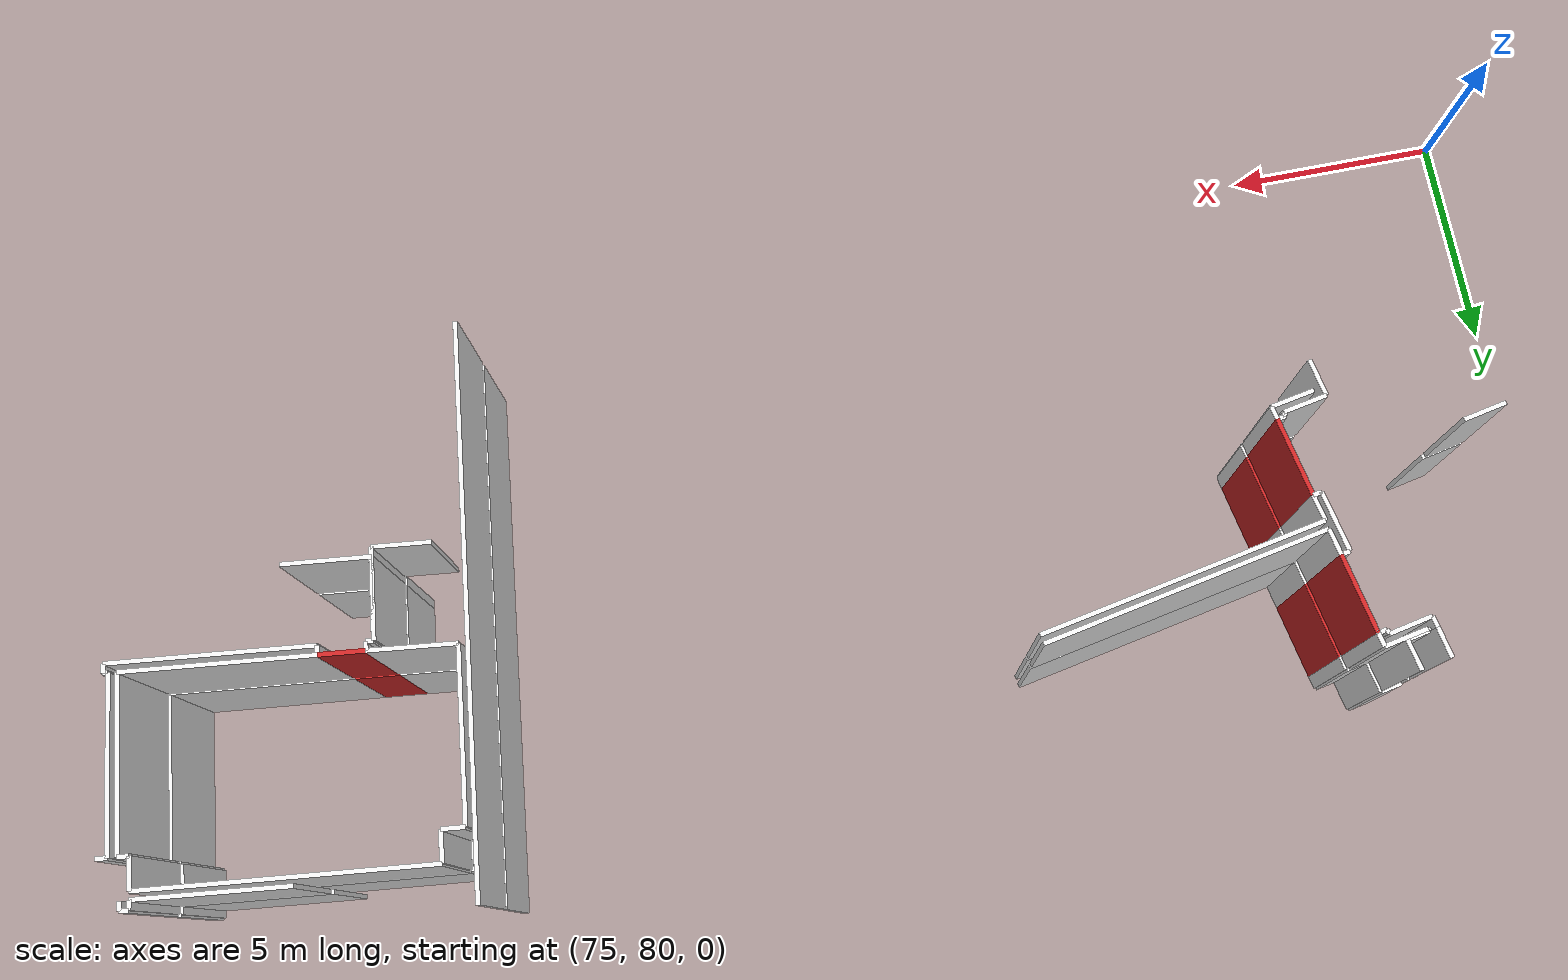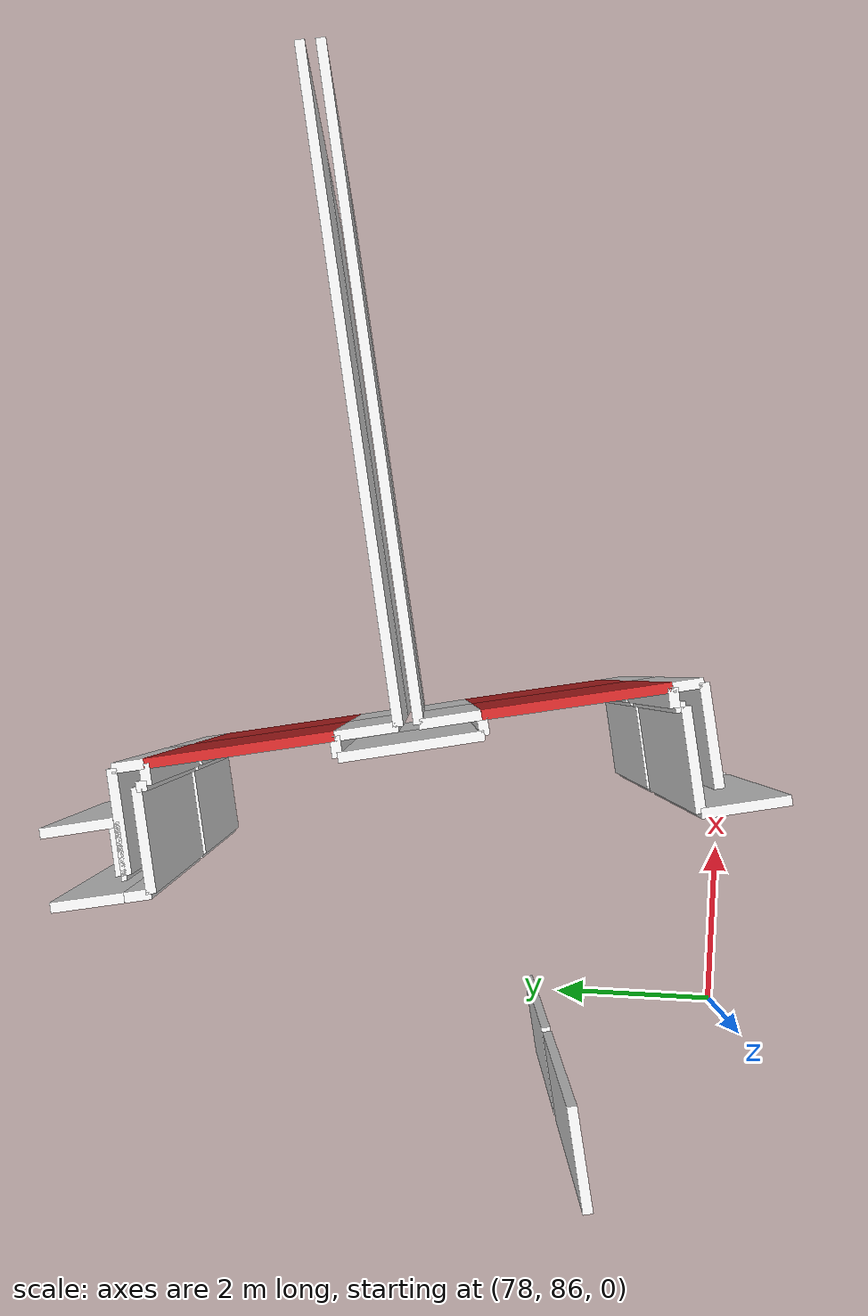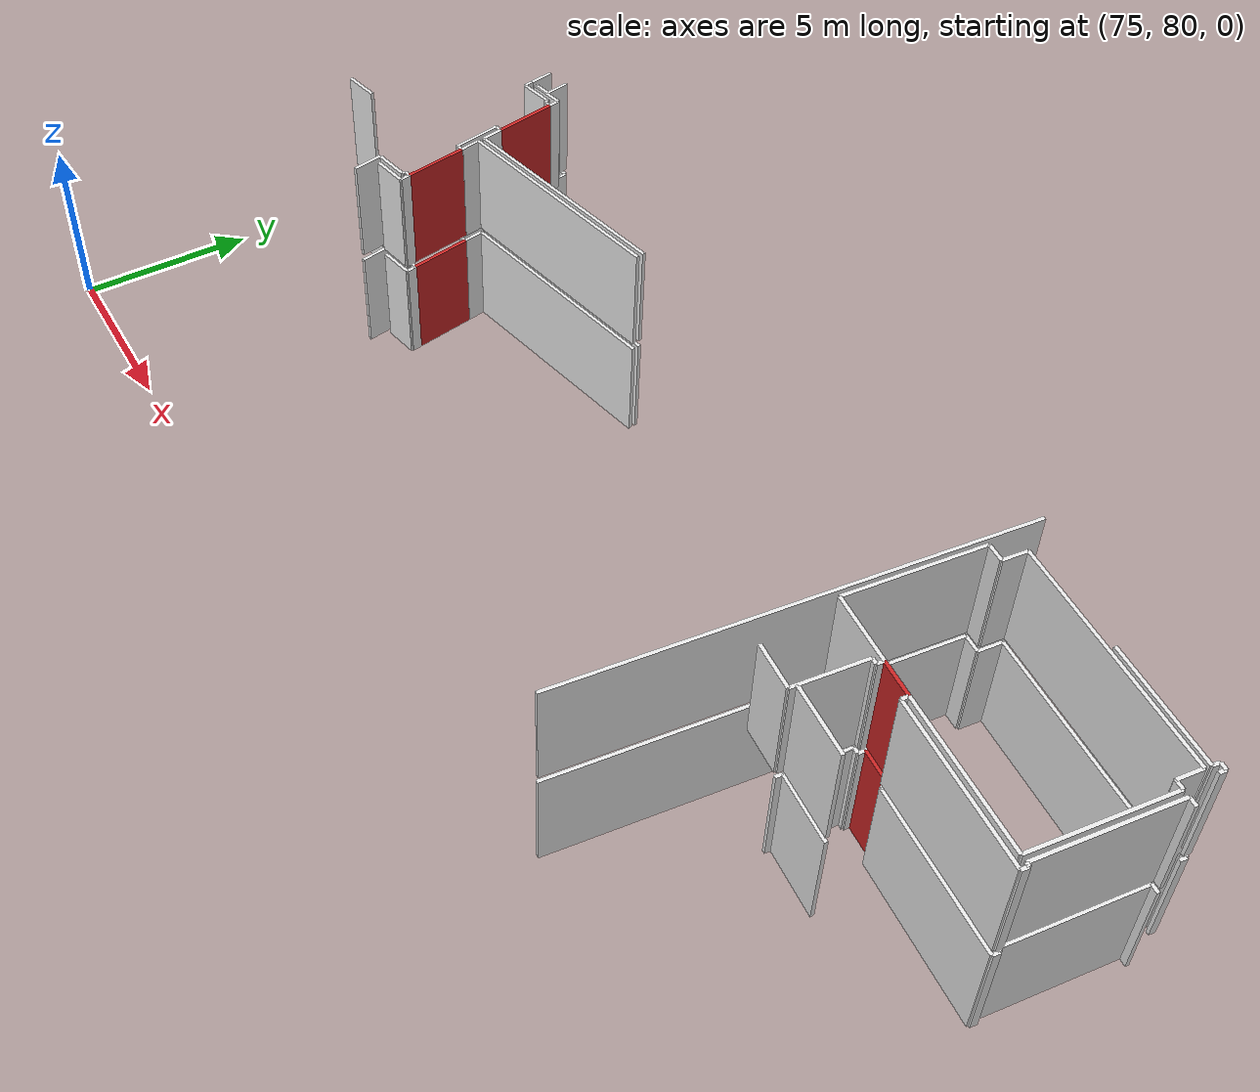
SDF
<sdf version="1.6">
 <world name="default">
  <model name="wall_102.4_88.9_0.0">
   <static>true</static>
   <pose>102.38000000000466 88.94000000017695 1.5 0 0 -0.09966865258337218</pose>
   <link name="link">
    <visual name="visual">
     <geometry><box><size>1.004987562121356 0.1 3</size></box></geometry>
     <material>
      <script><uri>file://media/materials/scripts/gazebo.material</uri><name>Gazebo/Red</name></script>
     </material>
    </visual>
   </link>
  </model>
  <model name="wall_81.3_91.7_0.0">
   <static>true</static>
   <pose>81.2949999999837 91.65999999991618 1.5 0 0 -1.374493662723798</pose>
   <link name="link">
    <visual name="visual">
     <geometry><box><size>1.7944637084198858 0.1 3</size></box></geometry>
     <material>
      <script><uri>file://media/materials/scripts/gazebo.material</uri><name>Gazebo/Red</name></script>
     </material>
    </visual>
   </link>
  </model>
  <model name="wall_81.9_88.5_0.0">
   <static>true</static>
   <pose>81.91500000000815 88.53499999991618 1.5 0 0 -1.3755746765469539</pose>
   <link name="link">
    <visual name="visual">
     <geometry><box><size>1.8042727066855455 0.1 3</size></box></geometry>
     <material>
      <script><uri>file://media/materials/scripts/gazebo.material</uri><name>Gazebo/Red</name></script>
     </material>
    </visual>
   </link>
  </model>
  <model name="wall_104.9_88.7_0.0">
   <static>true</static>
   <pose>104.94000000000233 88.68500000005588 1.5 0 0 -0.09918799887508435</pose>
   <link name="link">
    <visual name="visual">
     <geometry><box><size>4.1403502267421555 0.1 3</size></box></geometry>
     <material>
      <script><uri>file://media/materials/scripts/gazebo.material</uri><name>Gazebo/White</name></script>
     </material>
    </visual>
   </link>
  </model>
  <model name="wall_107.2_90.4_0.0">
   <static>true</static>
   <pose>107.19000000000233 90.36499999999069 1.5 0 0 1.4703398593399408</pose>
   <link name="link">
    <visual name="visual">
     <geometry><box><size>3.78910279619648 0.1 3</size></box></geometry>
     <material>
      <script><uri>file://media/materials/scripts/gazebo.material</uri><name>Gazebo/White</name></script>
     </material>
    </visual>
   </link>
  </model>
  <model name="wall_107.3_92.3_0.0">
   <static>true</static>
   <pose>107.25500000000466 92.26000000000931 1.5 0 0 3.061762667803524</pose>
   <link name="link">
    <visual name="visual">
     <geometry><box><size>0.25079872408117443 0.1 3</size></box></geometry>
     <material>
      <script><uri>file://media/materials/scripts/gazebo.material</uri><name>Gazebo/White</name></script>
     </material>
    </visual>
   </link>
  </model>
  <model name="wall_107.2_92.6_0.0">
   <static>true</static>
   <pose>107.16500000000815 92.62000000011176 1.5 0 0 1.4711276743202006</pose>
   <link name="link">
    <visual name="visual">
     <geometry><box><size>0.7034912936644975 0.1 3</size></box></geometry>
     <material>
      <script><uri>file://media/materials/scripts/gazebo.material</uri><name>Gazebo/White</name></script>
     </material>
    </visual>
   </link>
  </model>
  <model name="wall_104.1_93.3_0.0">
   <static>true</static>
   <pose>104.05999999999767 93.28500000014901 1.5 0 0 3.041608692913362</pose>
   <link name="link">
    <visual name="visual">
     <geometry><box><size>6.311521211261997 0.1 3</size></box></geometry>
     <material>
      <script><uri>file://media/materials/scripts/gazebo.material</uri><name>Gazebo/White</name></script>
     </material>
    </visual>
   </link>
  </model>
  <model name="wall_100.9_93.3_0.0">
   <static>true</static>
   <pose>100.88499999998021 93.25500000012107 1.5 0 0 -1.6718996985493473</pose>
   <link name="link">
    <visual name="visual">
     <geometry><box><size>0.693541635321099 0.1 3</size></box></geometry>
     <material>
      <script><uri>file://media/materials/scripts/gazebo.material</uri><name>Gazebo/White</name></script>
     </material>
    </visual>
   </link>
  </model>
  <model name="wall_100.6_92.9_0.0">
   <static>true</static>
   <pose>100.59999999997672 92.93500000005588 1.5 0 0 3.0419240014674718</pose>
   <link name="link">
    <visual name="visual">
     <geometry><box><size>0.5024937810375105 0.1 3</size></box></geometry>
     <material>
      <script><uri>file://media/materials/scripts/gazebo.material</uri><name>Gazebo/White</name></script>
     </material>
    </visual>
   </link>
  </model>
  <model name="wall_100.2_91.1_0.0">
   <static>true</static>
   <pose>100.15999999997439 91.07499999995343 1.5 0 0 -1.6712527942498523</pose>
   <link name="link">
    <visual name="visual">
     <geometry><box><size>3.78910279619648 0.1 3</size></box></geometry>
     <material>
      <script><uri>file://media/materials/scripts/gazebo.material</uri><name>Gazebo/White</name></script>
     </material>
    </visual>
   </link>
  </model>
  <model name="wall_100.9_89.1_0.0">
   <static>true</static>
   <pose>100.92499999998836 89.09000000008382 1.5 0 0 -0.10433183097900064</pose>
   <link name="link">
    <visual name="visual">
     <geometry><box><size>1.9204426573091837 0.1 3</size></box></geometry>
     <material>
      <script><uri>file://media/materials/scripts/gazebo.material</uri><name>Gazebo/White</name></script>
     </material>
    </visual>
   </link>
  </model>
  <model name="wall_107.7_92.2_0.0">
   <static>true</static>
   <pose>107.69500000000698 92.21500000008382 1.5 0 0 3.0221637283793843</pose>
   <link name="link">
    <visual name="visual">
     <geometry><box><size>0.2517935662158716 0.1 3</size></box></geometry>
     <material>
      <script><uri>file://media/materials/scripts/gazebo.material</uri><name>Gazebo/White</name></script>
     </material>
    </visual>
   </link>
  </model>
  <model name="wall_107.4_90.3_0.0">
   <static>true</static>
   <pose>107.38000000000466 90.34499999997206 1.5 0 0 -1.6712527942498523</pose>
   <link name="link">
    <visual name="visual">
     <geometry><box><size>3.78910279619648 0.1 3</size></box></geometry>
     <material>
      <script><uri>file://media/materials/scripts/gazebo.material</uri><name>Gazebo/White</name></script>
     </material>
    </visual>
   </link>
  </model>
  <model name="wall_107.2_88.5_0.0">
   <static>true</static>
   <pose>107.23999999999069 88.4550000000745 1.5 0 0 -0.09966865030117082</pose>
   <link name="link">
    <visual name="visual">
     <geometry><box><size>0.10049875616580058 0.1 3</size></box></geometry>
     <material>
      <script><uri>file://media/materials/scripts/gazebo.material</uri><name>Gazebo/White</name></script>
     </material>
    </visual>
   </link>
  </model>
  <model name="wall_102.5_86.9_0.0">
   <static>true</static>
   <pose>102.47000000000116 86.93499999982305 1.5 0 0 3.0429554602760422</pose>
   <link name="link">
    <visual name="visual">
     <geometry><box><size>1.929378138135752 0.1 3</size></box></geometry>
     <material>
      <script><uri>file://media/materials/scripts/gazebo.material</uri><name>Gazebo/White</name></script>
     </material>
    </visual>
   </link>
  </model>
  <model name="wall_101.6_87.9_0.0">
   <static>true</static>
   <pose>101.60000000000582 87.9199999999255 1.5 0 0 1.470015327728778</pose>
   <link name="link">
    <visual name="visual">
     <geometry><box><size>1.789077975082648 0.1 3</size></box></geometry>
     <material>
      <script><uri>file://media/materials/scripts/gazebo.material</uri><name>Gazebo/White</name></script>
     </material>
    </visual>
   </link>
  </model>
  <model name="wall_101.8_88.8_0.0">
   <static>true</static>
   <pose>101.77499999999418 88.80000000004657 1.5 0 0 -0.11710874468606086</pose>
   <link name="link">
    <visual name="visual">
     <geometry><box><size>0.1711724276722267 0.1 3</size></box></geometry>
     <material>
      <script><uri>file://media/materials/scripts/gazebo.material</uri><name>Gazebo/White</name></script>
     </material>
    </visual>
   </link>
  </model>
  <model name="wall_101.9_88.9_0.0">
   <static>true</static>
   <pose>101.86999999999534 88.89000000013039 1.5 0 0 1.4711276743037347</pose>
   <link name="link">
    <visual name="visual">
     <geometry><box><size>0.20099751260961132 0.1 3</size></box></geometry>
     <material>
      <script><uri>file://media/materials/scripts/gazebo.material</uri><name>Gazebo/White</name></script>
     </material>
    </visual>
   </link>
  </model>
  <model name="wall_102.9_88.8_0.0">
   <static>true</static>
   <pose>102.86999999999534 88.79000000003725 1.5 0 0 -1.6704649792860586</pose>
   <link name="link">
    <visual name="visual">
     <geometry><box><size>0.20099751260961132 0.1 3</size></box></geometry>
     <material>
      <script><uri>file://media/materials/scripts/gazebo.material</uri><name>Gazebo/White</name></script>
     </material>
    </visual>
   </link>
  </model>
  <model name="wall_105.1_88.5_0.0">
   <static>true</static>
   <pose>105.06500000000233 88.46999999997206 1.5 0 0 -0.099444135193827</pose>
   <link name="link">
    <visual name="visual">
     <geometry><box><size>4.431895756923703 0.1 3</size></box></geometry>
     <material>
      <script><uri>file://media/materials/scripts/gazebo.material</uri><name>Gazebo/White</name></script>
     </material>
    </visual>
   </link>
  </model>
  <model name="wall_107.3_88.4_0.0">
   <static>true</static>
   <pose>107.27999999999884 88.35000000009313 1.5 0 0 1.4711276745918913</pose>
   <link name="link">
    <visual name="visual">
     <geometry><box><size>0.20099751260381943 0.1 3</size></box></geometry>
     <material>
      <script><uri>file://media/materials/scripts/gazebo.material</uri><name>Gazebo/White</name></script>
     </material>
    </visual>
   </link>
  </model>
  <model name="wall_80.2_93.4_0.0">
   <static>true</static>
   <pose>80.17499999998836 93.42000000015832 1.5 0 0 0.2013171085608308</pose>
   <link name="link">
    <visual name="visual">
     <geometry><box><size>0.5000999900114971 0.1 3</size></box></geometry>
     <material>
      <script><uri>file://media/materials/scripts/gazebo.material</uri><name>Gazebo/White</name></script>
     </material>
    </visual>
   </link>
  </model>
  <model name="wall_80.5_93.1_0.0">
   <static>true</static>
   <pose>80.48999999999069 93.13000000012107 1.5 0 0 -1.3677511095704145</pose>
   <link name="link">
    <visual name="visual">
     <geometry><box><size>0.6942621984754026 0.1 3</size></box></geometry>
     <material>
      <script><uri>file://media/materials/scripts/gazebo.material</uri><name>Gazebo/White</name></script>
     </material>
    </visual>
   </link>
  </model>
  <model name="wall_80.3_92.7_0.0">
   <static>true</static>
   <pose>80.31500000000233 92.73999999999069 1.5 0 0 -2.9402755450289626</pose>
   <link name="link">
    <visual name="visual">
     <geometry><box><size>0.5000999900114971 0.1 3</size></box></geometry>
     <material>
      <script><uri>file://media/materials/scripts/gazebo.material</uri><name>Gazebo/White</name></script>
     </material>
    </visual>
   </link>
  </model>
  <model name="wall_80.1_92.7_0.0">
   <static>true</static>
   <pose>80.07500000001164 92.66500000003725 1.5 0 0 -1.3734007660495133</pose>
   <link name="link">
    <visual name="visual">
     <geometry><box><size>0.05099019495510694 0.1 3</size></box></geometry>
     <material>
      <script><uri>file://media/materials/scripts/gazebo.material</uri><name>Gazebo/White</name></script>
     </material>
    </visual>
   </link>
  </model>
  <model name="wall_80.6_92.7_0.0">
   <static>true</static>
   <pose>80.57000000000698 92.73999999999069 1.5 0 0 0.20131710810466522</pose>
   <link name="link">
    <visual name="visual">
     <geometry><box><size>1.0001999799298806 0.1 3</size></box></geometry>
     <material>
      <script><uri>file://media/materials/scripts/gazebo.material</uri><name>Gazebo/White</name></script>
     </material>
    </visual>
   </link>
  </model>
  <model name="wall_81.1_92.7_0.0">
   <static>true</static>
   <pose>81.08999999999651 92.68999999994412 1.5 0 0 -1.373400766833078</pose>
   <link name="link">
    <visual name="visual">
     <geometry><box><size>0.3059411706324631 0.1 3</size></box></geometry>
     <material>
      <script><uri>file://media/materials/scripts/gazebo.material</uri><name>Gazebo/White</name></script>
     </material>
    </visual>
   </link>
  </model>
  <model name="wall_81.5_90.5_0.0">
   <static>true</static>
   <pose>81.52999999999884 90.48499999986961 1.5 0 0 -1.3701434493385232</pose>
   <link name="link">
    <visual name="visual">
     <geometry><box><size>0.6020797288042661 0.1 3</size></box></geometry>
     <material>
      <script><uri>file://media/materials/scripts/gazebo.material</uri><name>Gazebo/White</name></script>
     </material>
    </visual>
   </link>
  </model>
  <model name="wall_84.8_90.8_0.0">
   <static>true</static>
   <pose>84.80500000002212 90.8300000000745 1.5 0 0 0.19649816258288277</pose>
   <link name="link">
    <visual name="visual">
     <geometry><box><size>6.556165037625101 0.1 3</size></box></geometry>
     <material>
      <script><uri>file://media/materials/scripts/gazebo.material</uri><name>Gazebo/White</name></script>
     </material>
    </visual>
   </link>
  </model>
  <model name="wall_77.7_88.3_0.0">
   <static>true</static>
   <pose>77.67999999999302 88.30000000004657 1.5 0 0 0.20131710810466522</pose>
   <link name="link">
    <visual name="visual">
     <geometry><box><size>1.0001999799298806 0.1 3</size></box></geometry>
     <material>
      <script><uri>file://media/materials/scripts/gazebo.material</uri><name>Gazebo/White</name></script>
     </material>
    </visual>
   </link>
  </model>
  <model name="wall_79.8_93.0_0.0">
   <static>true</static>
   <pose>79.80499999999302 92.98999999999069 1.5 0 0 -1.3818991459561358</pose>
   <link name="link">
    <visual name="visual">
     <geometry><box><size>0.6923149573923696 0.1 3</size></box></geometry>
     <material>
      <script><uri>file://media/materials/scripts/gazebo.material</uri><name>Gazebo/White</name></script>
     </material>
    </visual>
   </link>
  </model>
  <model name="wall_79.9_92.5_0.0">
   <static>true</static>
   <pose>79.89499999998952 92.52499999990687 1.5 0 0 -1.373400766989791</pose>
   <link name="link">
    <visual name="visual">
     <geometry><box><size>0.25495097567735614 0.1 3</size></box></geometry>
     <material>
      <script><uri>file://media/materials/scripts/gazebo.material</uri><name>Gazebo/White</name></script>
     </material>
    </visual>
   </link>
  </model>
  <model name="wall_80.4_92.5_0.0">
   <static>true</static>
   <pose>80.41000000000349 92.5 1.5 0 0 0.20131710854919393</pose>
   <link name="link">
    <visual name="visual">
     <geometry><box><size>1.0001999800800263 0.1 3</size></box></geometry>
     <material>
      <script><uri>file://media/materials/scripts/gazebo.material</uri><name>Gazebo/White</name></script>
     </material>
    </visual>
   </link>
  </model>
  <model name="wall_80.9_92.6_0.0">
   <static>true</static>
   <pose>80.91000000000349 92.55000000004657 1.5 0 0 -1.3734007675047049</pose>
   <link name="link">
    <visual name="visual">
     <geometry><box><size>0.10198039035541688 0.1 3</size></box></geometry>
     <material>
      <script><uri>file://media/materials/scripts/gazebo.material</uri><name>Gazebo/White</name></script>
     </material>
    </visual>
   </link>
  </model>
  <model name="wall_81.0_92.5_0.0">
   <static>true</static>
   <pose>81.01999999998952 92.52000000001863 1.5 0 0 0.19739556001778746</pose>
   <link name="link">
    <visual name="visual">
     <geometry><box><size>0.20396078056243275 0.1 3</size></box></geometry>
     <material>
      <script><uri>file://media/materials/scripts/gazebo.material</uri><name>Gazebo/White</name></script>
     </material>
    </visual>
   </link>
  </model>
  <model name="wall_81.4_90.8_0.0">
   <static>true</static>
   <pose>81.36999999999534 90.76000000000931 1.5 0 0 -2.944197095754793</pose>
   <link name="link">
    <visual name="visual">
     <geometry><box><size>0.20396078041403173 0.1 3</size></box></geometry>
     <material>
      <script><uri>file://media/materials/scripts/gazebo.material</uri><name>Gazebo/White</name></script>
     </material>
    </visual>
   </link>
  </model>
  <model name="wall_81.4_90.1_0.0">
   <static>true</static>
   <pose>81.41000000000349 90.06000000005588 1.5 0 0 -1.3677511096114738</pose>
   <link name="link">
    <visual name="visual">
     <geometry><box><size>1.3885243969390675 0.1 3</size></box></geometry>
     <material>
      <script><uri>file://media/materials/scripts/gazebo.material</uri><name>Gazebo/White</name></script>
     </material>
    </visual>
   </link>
  </model>
  <model name="wall_81.6_89.4_0.0">
   <static>true</static>
   <pose>81.64499999998952 89.39999999990687 1.5 0 0 0.20749622662047904</pose>
   <link name="link">
    <visual name="visual">
     <geometry><box><size>0.19416487839942884 0.1 3</size></box></geometry>
     <material>
      <script><uri>file://media/materials/scripts/gazebo.material</uri><name>Gazebo/White</name></script>
     </material>
    </visual>
   </link>
  </model>
  <model name="wall_82.0_87.6_0.0">
   <static>true</static>
   <pose>81.99500000002445 87.63500000000931 1.5 0 0 -2.9849907776618085</pose>
   <link name="link">
    <visual name="visual">
     <geometry><box><size>0.19235384058705793 0.1 3</size></box></geometry>
     <material>
      <script><uri>file://media/materials/scripts/gazebo.material</uri><name>Gazebo/White</name></script>
     </material>
    </visual>
   </link>
  </model>
  <model name="wall_81.9_87.6_0.0">
   <static>true</static>
   <pose>81.91000000000349 87.57000000006519 1.5 0 0 -1.3734007675047049</pose>
   <link name="link">
    <visual name="visual">
     <geometry><box><size>0.10198039035541688 0.1 3</size></box></geometry>
     <material>
      <script><uri>file://media/materials/scripts/gazebo.material</uri><name>Gazebo/White</name></script>
     </material>
    </visual>
   </link>
  </model>
  <model name="wall_81.4_87.4_0.0">
   <static>true</static>
   <pose>81.42499999998836 87.42500000004657 1.5 0 0 -2.9519790378681012</pose>
   <link name="link">
    <visual name="visual">
     <geometry><box><size>1.0080674580405449 0.1 3</size></box></geometry>
     <material>
      <script><uri>file://media/materials/scripts/gazebo.material</uri><name>Gazebo/White</name></script>
     </material>
    </visual>
   </link>
  </model>
  <model name="wall_81.0_86.9_0.0">
   <static>true</static>
   <pose>81.01499999998487 86.91000000014901 1.5 0 0 -1.3711124414039455</pose>
   <link name="link">
    <visual name="visual">
     <geometry><box><size>0.8570297542933495 0.1 3</size></box></geometry>
     <material>
      <script><uri>file://media/materials/scripts/gazebo.material</uri><name>Gazebo/White</name></script>
     </material>
    </visual>
   </link>
  </model>
  <model name="wall_107.4_93.2_0.0">
   <static>true</static>
   <pose>107.42999999999302 93.2249999998603 1.5 0 0 1.4659193879370842</pose>
   <link name="link">
    <visual name="visual">
     <geometry><box><size>0.19104973169180559 0.1 3</size></box></geometry>
     <material>
      <script><uri>file://media/materials/scripts/gazebo.material</uri><name>Gazebo/White</name></script>
     </material>
    </visual>
   </link>
  </model>
  <model name="wall_107.3_93.3_0.0">
   <static>true</static>
   <pose>107.34500000000116 93.33499999996275 1.5 0 0 2.9849907752705747</pose>
   <link name="link">
    <visual name="visual">
     <geometry><box><size>0.19235384065968367 0.1 3</size></box></geometry>
     <material>
      <script><uri>file://media/materials/scripts/gazebo.material</uri><name>Gazebo/White</name></script>
     </material>
    </visual>
   </link>
  </model>
  <model name="wall_107.2_93.2_0.0">
   <static>true</static>
   <pose>107.23499999998603 93.24500000011176 1.5 0 0 -1.712693381554281</pose>
   <link name="link">
    <visual name="visual">
     <geometry><box><size>0.21213203432303704 0.1 3</size></box></geometry>
     <material>
      <script><uri>file://media/materials/scripts/gazebo.material</uri><name>Gazebo/White</name></script>
     </material>
    </visual>
   </link>
  </model>
  <model name="wall_105.6_93.3_0.0">
   <static>true</static>
   <pose>105.57499999998254 93.31000000005588 1.5 0 0 3.038614747278259</pose>
   <link name="link">
    <visual name="visual">
     <geometry><box><size>3.307521730807039 0.1 3</size></box></geometry>
     <material>
      <script><uri>file://media/materials/scripts/gazebo.material</uri><name>Gazebo/White</name></script>
     </material>
    </visual>
   </link>
  </model>
  <model name="wall_99.7_88.4_0.0">
   <static>true</static>
   <pose>99.69000000000233 88.375 1.5 0 0 -1.6724688239947545</pose>
   <link name="link">
    <visual name="visual">
     <geometry><box><size>12.414108908448563 0.1 3</size></box></geometry>
     <material>
      <script><uri>file://media/materials/scripts/gazebo.material</uri><name>Gazebo/White</name></script>
     </material>
    </visual>
   </link>
  </model>
  <model name="wall_84.8_90.6_0.0">
   <static>true</static>
   <pose>84.83499999999185 90.63500000000931 1.5 0 0 -2.946590865346617</pose>
   <link name="link">
    <visual name="visual">
     <geometry><box><size>6.554220014613294 0.1 3</size></box></geometry>
     <material>
      <script><uri>file://media/materials/scripts/gazebo.material</uri><name>Gazebo/White</name></script>
     </material>
    </visual>
   </link>
  </model>
  <model name="wall_81.7_89.7_0.0">
   <static>true</static>
   <pose>81.67999999999302 89.70999999996275 1.5 0 0 -1.3667783472355337</pose>
   <link name="link">
    <visual name="visual">
     <geometry><box><size>0.592283715870451 0.1 3</size></box></geometry>
     <material>
      <script><uri>file://media/materials/scripts/gazebo.material</uri><name>Gazebo/White</name></script>
     </material>
    </visual>
   </link>
  </model>
  <model name="wall_82.1_87.5_0.0">
   <static>true</static>
   <pose>82.12000000002445 87.50499999988824 1.5 0 0 -1.3667783472355337</pose>
   <link name="link">
    <visual name="visual">
     <geometry><box><size>0.2961418579352255 0.1 3</size></box></geometry>
     <material>
      <script><uri>file://media/materials/scripts/gazebo.material</uri><name>Gazebo/White</name></script>
     </material>
    </visual>
   </link>
  </model>
  <model name="wall_81.7_87.3_0.0">
   <static>true</static>
   <pose>81.66000000000349 87.26499999989755 1.5 0 0 -2.950090935182675</pose>
   <link name="link">
    <visual name="visual">
     <geometry><box><size>0.9982484660926583 0.1 3</size></box></geometry>
     <material>
      <script><uri>file://media/materials/scripts/gazebo.material</uri><name>Gazebo/White</name></script>
     </material>
    </visual>
   </link>
  </model>
  <model name="wall_101.6_87.8_0.0">
   <static>true</static>
   <pose>101.58999999999651 87.81499999994412 1.5 0 0 1.4706301619123556</pose>
   <link name="link">
    <visual name="visual">
     <geometry><box><size>2.000025000067313 0.1 3</size></box></geometry>
     <material>
      <script><uri>file://media/materials/scripts/gazebo.material</uri><name>Gazebo/White</name></script>
     </material>
    </visual>
   </link>
  </model>
  <model name="wall_102.4_88.9_3.2">
   <static>true</static>
   <pose>102.38000000000466 88.94000000017695 4.7 0 0 -0.09966865258337218</pose>
   <link name="link">
    <visual name="visual">
     <geometry><box><size>1.004987562121356 0.1 3</size></box></geometry>
     <material>
      <script><uri>file://media/materials/scripts/gazebo.material</uri><name>Gazebo/Red</name></script>
     </material>
    </visual>
   </link>
  </model>
  <model name="wall_81.3_91.7_3.2">
   <static>true</static>
   <pose>81.2949999999837 91.65999999991618 4.7 0 0 -1.374493662723798</pose>
   <link name="link">
    <visual name="visual">
     <geometry><box><size>1.7944637084198858 0.1 3</size></box></geometry>
     <material>
      <script><uri>file://media/materials/scripts/gazebo.material</uri><name>Gazebo/Red</name></script>
     </material>
    </visual>
   </link>
  </model>
  <model name="wall_81.9_88.5_3.2">
   <static>true</static>
   <pose>81.91500000000815 88.53499999991618 4.7 0 0 -1.3755746765469539</pose>
   <link name="link">
    <visual name="visual">
     <geometry><box><size>1.8042727066855455 0.1 3</size></box></geometry>
     <material>
      <script><uri>file://media/materials/scripts/gazebo.material</uri><name>Gazebo/Red</name></script>
     </material>
    </visual>
   </link>
  </model>
  <model name="wall_104.9_88.7_3.2">
   <static>true</static>
   <pose>104.94000000000233 88.68500000005588 4.7 0 0 -0.09918799887508435</pose>
   <link name="link">
    <visual name="visual">
     <geometry><box><size>4.1403502267421555 0.1 3</size></box></geometry>
     <material>
      <script><uri>file://media/materials/scripts/gazebo.material</uri><name>Gazebo/White</name></script>
     </material>
    </visual>
   </link>
  </model>
  <model name="wall_107.2_90.4_3.2">
   <static>true</static>
   <pose>107.19000000000233 90.36499999999069 4.7 0 0 1.4703398593399408</pose>
   <link name="link">
    <visual name="visual">
     <geometry><box><size>3.78910279619648 0.1 3</size></box></geometry>
     <material>
      <script><uri>file://media/materials/scripts/gazebo.material</uri><name>Gazebo/White</name></script>
     </material>
    </visual>
   </link>
  </model>
  <model name="wall_107.3_92.3_3.2">
   <static>true</static>
   <pose>107.25500000000466 92.26000000000931 4.7 0 0 3.061762667803524</pose>
   <link name="link">
    <visual name="visual">
     <geometry><box><size>0.25079872408117443 0.1 3</size></box></geometry>
     <material>
      <script><uri>file://media/materials/scripts/gazebo.material</uri><name>Gazebo/White</name></script>
     </material>
    </visual>
   </link>
  </model>
  <model name="wall_107.2_92.6_3.2">
   <static>true</static>
   <pose>107.16500000000815 92.62000000011176 4.7 0 0 1.4711276743202006</pose>
   <link name="link">
    <visual name="visual">
     <geometry><box><size>0.7034912936644975 0.1 3</size></box></geometry>
     <material>
      <script><uri>file://media/materials/scripts/gazebo.material</uri><name>Gazebo/White</name></script>
     </material>
    </visual>
   </link>
  </model>
  <model name="wall_104.1_93.3_3.2">
   <static>true</static>
   <pose>104.05999999999767 93.28500000014901 4.7 0 0 3.041608692913362</pose>
   <link name="link">
    <visual name="visual">
     <geometry><box><size>6.311521211261997 0.1 3</size></box></geometry>
     <material>
      <script><uri>file://media/materials/scripts/gazebo.material</uri><name>Gazebo/White</name></script>
     </material>
    </visual>
   </link>
  </model>
  <model name="wall_100.9_93.3_3.2">
   <static>true</static>
   <pose>100.88499999998021 93.25500000012107 4.7 0 0 -1.6718996985493473</pose>
   <link name="link">
    <visual name="visual">
     <geometry><box><size>0.693541635321099 0.1 3</size></box></geometry>
     <material>
      <script><uri>file://media/materials/scripts/gazebo.material</uri><name>Gazebo/White</name></script>
     </material>
    </visual>
   </link>
  </model>
  <model name="wall_100.6_92.9_3.2">
   <static>true</static>
   <pose>100.59999999997672 92.93500000005588 4.7 0 0 3.0419240014674718</pose>
   <link name="link">
    <visual name="visual">
     <geometry><box><size>0.5024937810375105 0.1 3</size></box></geometry>
     <material>
      <script><uri>file://media/materials/scripts/gazebo.material</uri><name>Gazebo/White</name></script>
     </material>
    </visual>
   </link>
  </model>
  <model name="wall_100.2_91.1_3.2">
   <static>true</static>
   <pose>100.15999999997439 91.07499999995343 4.7 0 0 -1.6712527942498523</pose>
   <link name="link">
    <visual name="visual">
     <geometry><box><size>3.78910279619648 0.1 3</size></box></geometry>
     <material>
      <script><uri>file://media/materials/scripts/gazebo.material</uri><name>Gazebo/White</name></script>
     </material>
    </visual>
   </link>
  </model>
  <model name="wall_100.9_89.1_3.2">
   <static>true</static>
   <pose>100.92499999998836 89.09000000008382 4.7 0 0 -0.10433183097900064</pose>
   <link name="link">
    <visual name="visual">
     <geometry><box><size>1.9204426573091837 0.1 3</size></box></geometry>
     <material>
      <script><uri>file://media/materials/scripts/gazebo.material</uri><name>Gazebo/White</name></script>
     </material>
    </visual>
   </link>
  </model>
  <model name="wall_107.7_92.2_3.2">
   <static>true</static>
   <pose>107.69500000000698 92.21500000008382 4.7 0 0 3.0221637283793843</pose>
   <link name="link">
    <visual name="visual">
     <geometry><box><size>0.2517935662158716 0.1 3</size></box></geometry>
     <material>
      <script><uri>file://media/materials/scripts/gazebo.material</uri><name>Gazebo/White</name></script>
     </material>
    </visual>
   </link>
  </model>
  <model name="wall_107.4_90.3_3.2">
   <static>true</static>
   <pose>107.38000000000466 90.34499999997206 4.7 0 0 -1.6712527942498523</pose>
   <link name="link">
    <visual name="visual">
     <geometry><box><size>3.78910279619648 0.1 3</size></box></geometry>
     <material>
      <script><uri>file://media/materials/scripts/gazebo.material</uri><name>Gazebo/White</name></script>
     </material>
    </visual>
   </link>
  </model>
  <model name="wall_107.2_88.5_3.2">
   <static>true</static>
   <pose>107.23999999999069 88.4550000000745 4.7 0 0 -0.09966865030117082</pose>
   <link name="link">
    <visual name="visual">
     <geometry><box><size>0.10049875616580058 0.1 3</size></box></geometry>
     <material>
      <script><uri>file://media/materials/scripts/gazebo.material</uri><name>Gazebo/White</name></script>
     </material>
    </visual>
   </link>
  </model>
  <model name="wall_100.9_86.9_3.2">
   <static>true</static>
   <pose>100.85999999998603 86.88500000000931 4.7 0 0 3.038781827344916</pose>
   <link name="link">
    <visual name="visual">
     <geometry><box><size>1.2666885963469807 0.1 3</size></box></geometry>
     <material>
      <script><uri>file://media/materials/scripts/gazebo.material</uri><name>Gazebo/White</name></script>
     </material>
    </visual>
   </link>
  </model>
  <model name="wall_102.5_86.9_3.2">
   <static>true</static>
   <pose>102.47000000000116 86.93499999982305 4.7 0 0 3.0429554602760422</pose>
   <link name="link">
    <visual name="visual">
     <geometry><box><size>1.929378138135752 0.1 3</size></box></geometry>
     <material>
      <script><uri>file://media/materials/scripts/gazebo.material</uri><name>Gazebo/White</name></script>
     </material>
    </visual>
   </link>
  </model>
  <model name="wall_101.6_87.9_3.2">
   <static>true</static>
   <pose>101.60000000000582 87.9199999999255 4.7 0 0 1.470015327728778</pose>
   <link name="link">
    <visual name="visual">
     <geometry><box><size>1.789077975082648 0.1 3</size></box></geometry>
     <material>
      <script><uri>file://media/materials/scripts/gazebo.material</uri><name>Gazebo/White</name></script>
     </material>
    </visual>
   </link>
  </model>
  <model name="wall_101.8_88.8_3.2">
   <static>true</static>
   <pose>101.77499999999418 88.80000000004657 4.7 0 0 -0.11710874468606086</pose>
   <link name="link">
    <visual name="visual">
     <geometry><box><size>0.1711724276722267 0.1 3</size></box></geometry>
     <material>
      <script><uri>file://media/materials/scripts/gazebo.material</uri><name>Gazebo/White</name></script>
     </material>
    </visual>
   </link>
  </model>
  <model name="wall_101.9_88.9_3.2">
   <static>true</static>
   <pose>101.86999999999534 88.89000000013039 4.7 0 0 1.4711276743037347</pose>
   <link name="link">
    <visual name="visual">
     <geometry><box><size>0.20099751260961132 0.1 3</size></box></geometry>
     <material>
      <script><uri>file://media/materials/scripts/gazebo.material</uri><name>Gazebo/White</name></script>
     </material>
    </visual>
   </link>
  </model>
  <model name="wall_102.9_88.8_3.2">
   <static>true</static>
   <pose>102.86999999999534 88.79000000003725 4.7 0 0 -1.6704649792860586</pose>
   <link name="link">
    <visual name="visual">
     <geometry><box><size>0.20099751260961132 0.1 3</size></box></geometry>
     <material>
      <script><uri>file://media/materials/scripts/gazebo.material</uri><name>Gazebo/White</name></script>
     </material>
    </visual>
   </link>
  </model>
  <model name="wall_105.1_88.5_3.2">
   <static>true</static>
   <pose>105.06500000000233 88.46999999997206 4.7 0 0 -0.099444135193827</pose>
   <link name="link">
    <visual name="visual">
     <geometry><box><size>4.431895756923703 0.1 3</size></box></geometry>
     <material>
      <script><uri>file://media/materials/scripts/gazebo.material</uri><name>Gazebo/White</name></script>
     </material>
    </visual>
   </link>
  </model>
  <model name="wall_107.3_88.4_3.2">
   <static>true</static>
   <pose>107.27999999999884 88.35000000009313 4.7 0 0 1.4711276745918913</pose>
   <link name="link">
    <visual name="visual">
     <geometry><box><size>0.20099751260381943 0.1 3</size></box></geometry>
     <material>
      <script><uri>file://media/materials/scripts/gazebo.material</uri><name>Gazebo/White</name></script>
     </material>
    </visual>
   </link>
  </model>
  <model name="wall_80.5_93.1_3.2">
   <static>true</static>
   <pose>80.48999999999069 93.13000000012107 4.7 0 0 -1.3677511095704145</pose>
   <link name="link">
    <visual name="visual">
     <geometry><box><size>0.6942621984754026 0.1 3</size></box></geometry>
     <material>
      <script><uri>file://media/materials/scripts/gazebo.material</uri><name>Gazebo/White</name></script>
     </material>
    </visual>
   </link>
  </model>
  <model name="wall_80.3_92.7_3.2">
   <static>true</static>
   <pose>80.31500000000233 92.73999999999069 4.7 0 0 -2.9402755450289626</pose>
   <link name="link">
    <visual name="visual">
     <geometry><box><size>0.5000999900114971 0.1 3</size></box></geometry>
     <material>
      <script><uri>file://media/materials/scripts/gazebo.material</uri><name>Gazebo/White</name></script>
     </material>
    </visual>
   </link>
  </model>
  <model name="wall_80.1_92.7_3.2">
   <static>true</static>
   <pose>80.07500000001164 92.66500000003725 4.7 0 0 -1.3734007660495133</pose>
   <link name="link">
    <visual name="visual">
     <geometry><box><size>0.05099019495510694 0.1 3</size></box></geometry>
     <material>
      <script><uri>file://media/materials/scripts/gazebo.material</uri><name>Gazebo/White</name></script>
     </material>
    </visual>
   </link>
  </model>
  <model name="wall_80.6_92.7_3.2">
   <static>true</static>
   <pose>80.57000000000698 92.73999999999069 4.7 0 0 0.20131710810466522</pose>
   <link name="link">
    <visual name="visual">
     <geometry><box><size>1.0001999799298806 0.1 3</size></box></geometry>
     <material>
      <script><uri>file://media/materials/scripts/gazebo.material</uri><name>Gazebo/White</name></script>
     </material>
    </visual>
   </link>
  </model>
  <model name="wall_81.1_92.7_3.2">
   <static>true</static>
   <pose>81.08999999999651 92.68999999994412 4.7 0 0 -1.373400766833078</pose>
   <link name="link">
    <visual name="visual">
     <geometry><box><size>0.3059411706324631 0.1 3</size></box></geometry>
     <material>
      <script><uri>file://media/materials/scripts/gazebo.material</uri><name>Gazebo/White</name></script>
     </material>
    </visual>
   </link>
  </model>
  <model name="wall_81.5_90.5_3.2">
   <static>true</static>
   <pose>81.52999999999884 90.48499999986961 4.7 0 0 -1.3701434493385232</pose>
   <link name="link">
    <visual name="visual">
     <geometry><box><size>0.6020797288042661 0.1 3</size></box></geometry>
     <material>
      <script><uri>file://media/materials/scripts/gazebo.material</uri><name>Gazebo/White</name></script>
     </material>
    </visual>
   </link>
  </model>
  <model name="wall_84.8_90.8_3.2">
   <static>true</static>
   <pose>84.80500000002212 90.8300000000745 4.7 0 0 0.19649816258288277</pose>
   <link name="link">
    <visual name="visual">
     <geometry><box><size>6.556165037625101 0.1 3</size></box></geometry>
     <material>
      <script><uri>file://media/materials/scripts/gazebo.material</uri><name>Gazebo/White</name></script>
     </material>
    </visual>
   </link>
  </model>
  <model name="wall_77.7_88.3_3.2">
   <static>true</static>
   <pose>77.67999999999302 88.30000000004657 4.7 0 0 0.20131710810466522</pose>
   <link name="link">
    <visual name="visual">
     <geometry><box><size>1.0001999799298806 0.1 3</size></box></geometry>
     <material>
      <script><uri>file://media/materials/scripts/gazebo.material</uri><name>Gazebo/White</name></script>
     </material>
    </visual>
   </link>
  </model>
  <model name="wall_79.8_93.0_3.2">
   <static>true</static>
   <pose>79.80499999999302 92.98999999999069 4.7 0 0 -1.3818991459561358</pose>
   <link name="link">
    <visual name="visual">
     <geometry><box><size>0.6923149573923696 0.1 3</size></box></geometry>
     <material>
      <script><uri>file://media/materials/scripts/gazebo.material</uri><name>Gazebo/White</name></script>
     </material>
    </visual>
   </link>
  </model>
  <model name="wall_79.9_92.5_3.2">
   <static>true</static>
   <pose>79.89499999998952 92.52499999990687 4.7 0 0 -1.373400766989791</pose>
   <link name="link">
    <visual name="visual">
     <geometry><box><size>0.25495097567735614 0.1 3</size></box></geometry>
     <material>
      <script><uri>file://media/materials/scripts/gazebo.material</uri><name>Gazebo/White</name></script>
     </material>
    </visual>
   </link>
  </model>
  <model name="wall_80.4_92.5_3.2">
   <static>true</static>
   <pose>80.41000000000349 92.5 4.7 0 0 0.20131710854919393</pose>
   <link name="link">
    <visual name="visual">
     <geometry><box><size>1.0001999800800263 0.1 3</size></box></geometry>
     <material>
      <script><uri>file://media/materials/scripts/gazebo.material</uri><name>Gazebo/White</name></script>
     </material>
    </visual>
   </link>
  </model>
  <model name="wall_80.9_92.6_3.2">
   <static>true</static>
   <pose>80.91000000000349 92.55000000004657 4.7 0 0 -1.3734007675047049</pose>
   <link name="link">
    <visual name="visual">
     <geometry><box><size>0.10198039035541688 0.1 3</size></box></geometry>
     <material>
      <script><uri>file://media/materials/scripts/gazebo.material</uri><name>Gazebo/White</name></script>
     </material>
    </visual>
   </link>
  </model>
  <model name="wall_81.0_92.5_3.2">
   <static>true</static>
   <pose>81.01999999998952 92.52000000001863 4.7 0 0 0.19739556001778746</pose>
   <link name="link">
    <visual name="visual">
     <geometry><box><size>0.20396078056243275 0.1 3</size></box></geometry>
     <material>
      <script><uri>file://media/materials/scripts/gazebo.material</uri><name>Gazebo/White</name></script>
     </material>
    </visual>
   </link>
  </model>
  <model name="wall_81.4_90.8_3.2">
   <static>true</static>
   <pose>81.36999999999534 90.76000000000931 4.7 0 0 -2.944197095754793</pose>
   <link name="link">
    <visual name="visual">
     <geometry><box><size>0.20396078041403173 0.1 3</size></box></geometry>
     <material>
      <script><uri>file://media/materials/scripts/gazebo.material</uri><name>Gazebo/White</name></script>
     </material>
    </visual>
   </link>
  </model>
  <model name="wall_81.4_90.1_3.2">
   <static>true</static>
   <pose>81.41000000000349 90.06000000005588 4.7 0 0 -1.3677511096114738</pose>
   <link name="link">
    <visual name="visual">
     <geometry><box><size>1.3885243969390675 0.1 3</size></box></geometry>
     <material>
      <script><uri>file://media/materials/scripts/gazebo.material</uri><name>Gazebo/White</name></script>
     </material>
    </visual>
   </link>
  </model>
  <model name="wall_81.6_89.4_3.2">
   <static>true</static>
   <pose>81.64499999998952 89.39999999990687 4.7 0 0 0.20749622662047904</pose>
   <link name="link">
    <visual name="visual">
     <geometry><box><size>0.19416487839942884 0.1 3</size></box></geometry>
     <material>
      <script><uri>file://media/materials/scripts/gazebo.material</uri><name>Gazebo/White</name></script>
     </material>
    </visual>
   </link>
  </model>
  <model name="wall_82.0_87.6_3.2">
   <static>true</static>
   <pose>81.99500000002445 87.63500000000931 4.7 0 0 -2.9849907776618085</pose>
   <link name="link">
    <visual name="visual">
     <geometry><box><size>0.19235384058705793 0.1 3</size></box></geometry>
     <material>
      <script><uri>file://media/materials/scripts/gazebo.material</uri><name>Gazebo/White</name></script>
     </material>
    </visual>
   </link>
  </model>
  <model name="wall_81.9_87.6_3.2">
   <static>true</static>
   <pose>81.91000000000349 87.57000000006519 4.7 0 0 -1.3734007675047049</pose>
   <link name="link">
    <visual name="visual">
     <geometry><box><size>0.10198039035541688 0.1 3</size></box></geometry>
     <material>
      <script><uri>file://media/materials/scripts/gazebo.material</uri><name>Gazebo/White</name></script>
     </material>
    </visual>
   </link>
  </model>
  <model name="wall_81.4_87.4_3.2">
   <static>true</static>
   <pose>81.42499999998836 87.42500000004657 4.7 0 0 -2.9519790378681012</pose>
   <link name="link">
    <visual name="visual">
     <geometry><box><size>1.0080674580405449 0.1 3</size></box></geometry>
     <material>
      <script><uri>file://media/materials/scripts/gazebo.material</uri><name>Gazebo/White</name></script>
     </material>
    </visual>
   </link>
  </model>
  <model name="wall_81.0_86.9_3.2">
   <static>true</static>
   <pose>81.01499999998487 86.91000000014901 4.7 0 0 -1.3711124414039455</pose>
   <link name="link">
    <visual name="visual">
     <geometry><box><size>0.8570297542933495 0.1 3</size></box></geometry>
     <material>
      <script><uri>file://media/materials/scripts/gazebo.material</uri><name>Gazebo/White</name></script>
     </material>
    </visual>
   </link>
  </model>
  <model name="wall_107.4_93.2_3.2">
   <static>true</static>
   <pose>107.42999999999302 93.2249999998603 4.7 0 0 1.4659193879370842</pose>
   <link name="link">
    <visual name="visual">
     <geometry><box><size>0.19104973169180559 0.1 3</size></box></geometry>
     <material>
      <script><uri>file://media/materials/scripts/gazebo.material</uri><name>Gazebo/White</name></script>
     </material>
    </visual>
   </link>
  </model>
  <model name="wall_107.3_93.3_3.2">
   <static>true</static>
   <pose>107.34500000000116 93.33499999996275 4.7 0 0 2.9849907752705747</pose>
   <link name="link">
    <visual name="visual">
     <geometry><box><size>0.19235384065968367 0.1 3</size></box></geometry>
     <material>
      <script><uri>file://media/materials/scripts/gazebo.material</uri><name>Gazebo/White</name></script>
     </material>
    </visual>
   </link>
  </model>
  <model name="wall_107.2_93.2_3.2">
   <static>true</static>
   <pose>107.23499999998603 93.24500000011176 4.7 0 0 -1.712693381554281</pose>
   <link name="link">
    <visual name="visual">
     <geometry><box><size>0.21213203432303704 0.1 3</size></box></geometry>
     <material>
      <script><uri>file://media/materials/scripts/gazebo.material</uri><name>Gazebo/White</name></script>
     </material>
    </visual>
   </link>
  </model>
  <model name="wall_105.6_93.3_3.2">
   <static>true</static>
   <pose>105.57499999998254 93.31000000005588 4.7 0 0 3.038614747278259</pose>
   <link name="link">
    <visual name="visual">
     <geometry><box><size>3.307521730807039 0.1 3</size></box></geometry>
     <material>
      <script><uri>file://media/materials/scripts/gazebo.material</uri><name>Gazebo/White</name></script>
     </material>
    </visual>
   </link>
  </model>
  <model name="wall_99.7_88.4_3.2">
   <static>true</static>
   <pose>99.69000000000233 88.375 4.7 0 0 -1.6724688239947545</pose>
   <link name="link">
    <visual name="visual">
     <geometry><box><size>12.414108908448563 0.1 3</size></box></geometry>
     <material>
      <script><uri>file://media/materials/scripts/gazebo.material</uri><name>Gazebo/White</name></script>
     </material>
    </visual>
   </link>
  </model>
  <model name="wall_84.8_90.6_3.2">
   <static>true</static>
   <pose>84.83499999999185 90.63500000000931 4.7 0 0 -2.946590865346617</pose>
   <link name="link">
    <visual name="visual">
     <geometry><box><size>6.554220014613294 0.1 3</size></box></geometry>
     <material>
      <script><uri>file://media/materials/scripts/gazebo.material</uri><name>Gazebo/White</name></script>
     </material>
    </visual>
   </link>
  </model>
  <model name="wall_81.7_89.7_3.2">
   <static>true</static>
   <pose>81.67999999999302 89.70999999996275 4.7 0 0 -1.3667783472355337</pose>
   <link name="link">
    <visual name="visual">
     <geometry><box><size>0.592283715870451 0.1 3</size></box></geometry>
     <material>
      <script><uri>file://media/materials/scripts/gazebo.material</uri><name>Gazebo/White</name></script>
     </material>
    </visual>
   </link>
  </model>
  <model name="wall_82.1_87.5_3.2">
   <static>true</static>
   <pose>82.12000000002445 87.50499999988824 4.7 0 0 -1.3667783472355337</pose>
   <link name="link">
    <visual name="visual">
     <geometry><box><size>0.2961418579352255 0.1 3</size></box></geometry>
     <material>
      <script><uri>file://media/materials/scripts/gazebo.material</uri><name>Gazebo/White</name></script>
     </material>
    </visual>
   </link>
  </model>
  <model name="wall_81.7_87.3_3.2">
   <static>true</static>
   <pose>81.66000000000349 87.26499999989755 4.7 0 0 -2.950090935182675</pose>
   <link name="link">
    <visual name="visual">
     <geometry><box><size>0.9982484660926583 0.1 3</size></box></geometry>
     <material>
      <script><uri>file://media/materials/scripts/gazebo.material</uri><name>Gazebo/White</name></script>
     </material>
    </visual>
   </link>
  </model>
  <model name="wall_101.6_87.8_3.2">
   <static>true</static>
   <pose>101.58999999999651 87.81499999994412 4.7 0 0 1.4706301619123556</pose>
   <link name="link">
    <visual name="visual">
     <geometry><box><size>2.000025000067313 0.1 3</size></box></geometry>
     <material>
      <script><uri>file://media/materials/scripts/gazebo.material</uri><name>Gazebo/White</name></script>
     </material>
    </visual>
   </link>
  </model>
 </world>
</sdf>
